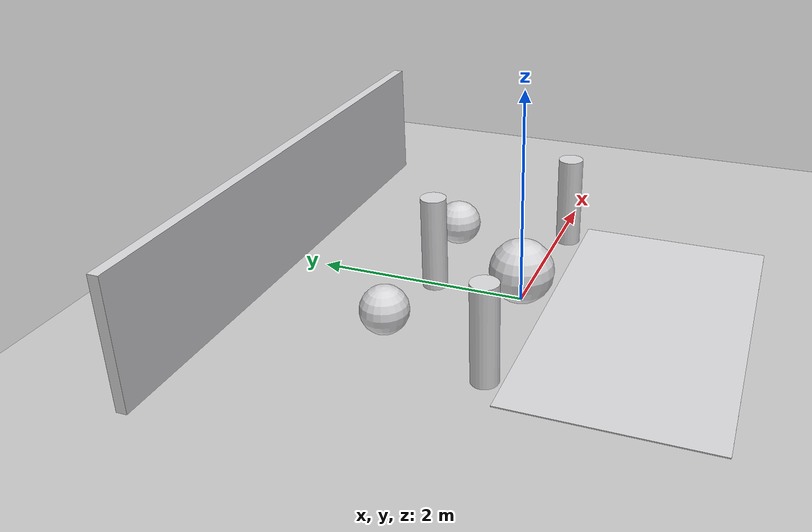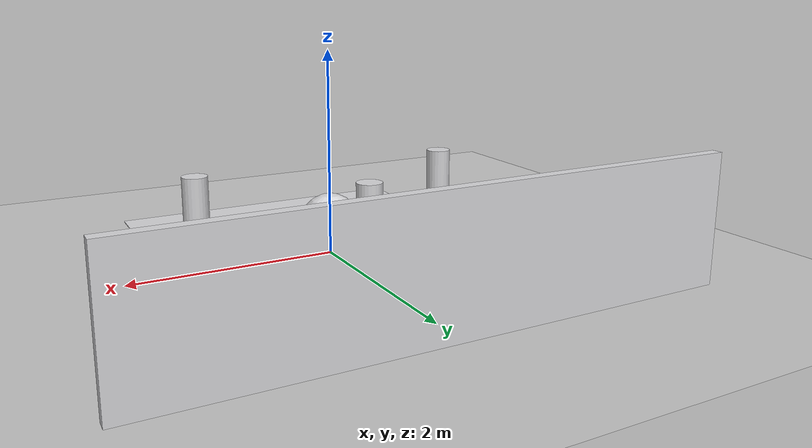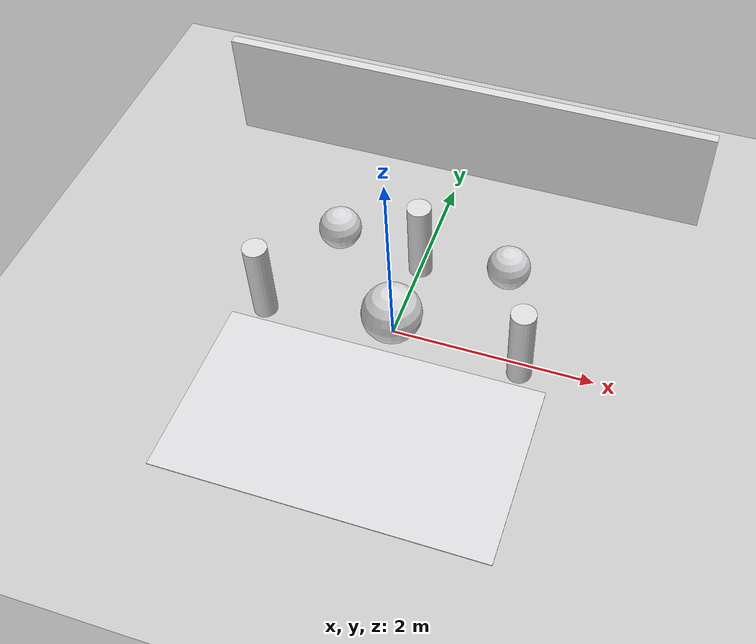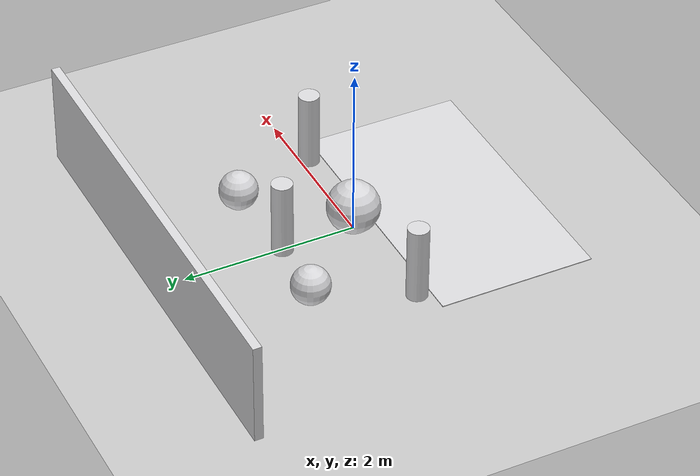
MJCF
<mujoco model="many_lights">
  <compiler angle="degree" autolimits="true"/>

  <visual>

    <headlight ambient="0.06 0.06 0.06" diffuse="0.05 0.05 0.05" specular="0.05 0.05 0.05"/>
    <quality shadowsize="4096" numslices="28" numstacks="16"/>
    <map znear="0.02" zfar="40" shadowclip="1.2" shadowscale="0.7"/>
  </visual>

  <asset>
    <material name="ground" rgba="0.78 0.78 0.78 1" specular="0.15" shininess="0.25"/>
    <material name="pale" rgba="0.85 0.85 0.86 1" specular="0.35" shininess="0.5"/>
    <material name="pale_glossy" rgba="0.85 0.85 0.86 1" specular="0.9" shininess="0.95"/>
  </asset>

  <worldbody>

    <light name="sun" type="directional" pos="0 -4 5" dir="0.15 0.5 -1"
           diffuse="0.30 0.30 0.32" specular="0.15 0.15 0.15" castshadow="true"/>

    <light name="point_r" type="point" pos="-1.30 -0.75 0.80" diffuse="0.90 0.10 0.10"
           specular="0.5 0.1 0.1" attenuation="1 0 0.35" castshadow="false"/>
    <light name="point_g" type="point" pos=" 1.30 -0.75 0.80" diffuse="0.10 0.90 0.15"
           specular="0.1 0.5 0.1" attenuation="1 0 0.35" castshadow="false"/>
    <light name="point_b" type="point" pos=" 0.00  1.50 0.80" diffuse="0.15 0.20 0.95"
           specular="0.1 0.1 0.5" attenuation="1 0 0.35" castshadow="false"/>

    <light name="point_falloff" type="point" pos="-2.40 1.60 0.55" diffuse="0.95 0.55 0.10"
           specular="0.3 0.2 0.05" attenuation="1 0 4.0" castshadow="false"/>

    <light name="spot_narrow" type="spot" pos="-0.55 -2.30 1.80" dir="0 0.35 -1"
           diffuse="0.95 0.90 0.30" specular="0.4 0.4 0.15"
           cutoff="15" exponent="30" attenuation="1 0 0.05" castshadow="false"/>
    <light name="spot_wide" type="spot" pos="0.55 -2.30 1.80" dir="0 0.35 -1"
           diffuse="0.20 0.85 0.95" specular="0.1 0.4 0.4"
           cutoff="55" exponent="2" attenuation="1 0 0.05" castshadow="false"/>

    <light name="point_grazing" type="point" pos="2.30 1.70 0.12" diffuse="0.70 0.15 0.85"
           specular="0.3 0.1 0.35" attenuation="1 0 0.6" castshadow="false"/>

    <light name="fill_00" type="point" pos="-1.5 -1.2 1.5" diffuse="0.08 0.05 0.04" attenuation="1 0 1.5"/>
    <light name="fill_01" type="point" pos="-0.5 -1.2 1.5" diffuse="0.04 0.06 0.08" attenuation="1 0 1.5"/>
    <light name="fill_02" type="point" pos=" 0.5 -1.2 1.5" diffuse="0.08 0.05 0.04" attenuation="1 0 1.5"/>
    <light name="fill_03" type="point" pos=" 1.5 -1.2 1.5" diffuse="0.04 0.06 0.08" attenuation="1 0 1.5"/>
    <light name="fill_04" type="point" pos="-1.5 -0.4 1.5" diffuse="0.04 0.06 0.08" attenuation="1 0 1.5"/>
    <light name="fill_05" type="point" pos="-0.5 -0.4 1.5" diffuse="0.08 0.05 0.04" attenuation="1 0 1.5"/>
    <light name="fill_06" type="point" pos=" 0.5 -0.4 1.5" diffuse="0.04 0.06 0.08" attenuation="1 0 1.5"/>
    <light name="fill_07" type="point" pos=" 1.5 -0.4 1.5" diffuse="0.08 0.05 0.04" attenuation="1 0 1.5"/>
    <light name="fill_08" type="point" pos="-1.5  0.4 1.5" diffuse="0.40 0.24 0.18" attenuation="1 0 1.5"/>
    <light name="fill_09" type="point" pos="-0.5  0.4 1.5" diffuse="0.18 0.29 0.40" attenuation="1 0 1.5"/>
    <light name="fill_10" type="point" pos=" 0.5  0.4 1.5" diffuse="0.40 0.24 0.18" attenuation="1 0 1.5"/>
    <light name="fill_11" type="point" pos=" 1.5  0.4 1.5" diffuse="0.18 0.29 0.40" attenuation="1 0 1.5"/>
    <light name="fill_12" type="point" pos="-1.5  1.2 1.5" diffuse="0.18 0.29 0.40" attenuation="1 0 1.5"/>
    <light name="fill_13" type="point" pos="-0.5  1.2 1.5" diffuse="0.40 0.24 0.18" attenuation="1 0 1.5"/>
    <light name="fill_14" type="point" pos=" 0.5  1.2 1.5" diffuse="0.18 0.29 0.40" attenuation="1 0 1.5"/>
    <light name="fill_15" type="point" pos=" 1.5  1.2 1.5" diffuse="0.40 0.24 0.18" attenuation="1 0 1.5"/>

    <geom name="floor" type="plane" size="0 0 0.05" material="ground"/>

    <geom name="board" type="box" pos="0 -1.15 0.005" size="1.6 0.9 0.005" material="pale"/>

    <geom name="col_0" type="cylinder" pos="-1.30 -0.10 0.45" size="0.12 0.45" material="pale"/>
    <geom name="col_1" type="cylinder" pos=" 1.30 -0.10 0.45" size="0.12 0.45" material="pale"/>
    <geom name="col_2" type="cylinder" pos=" 0.00  0.85 0.45" size="0.12 0.45" material="pale"/>
    <geom name="ball_matte" type="sphere" pos="0 0 0.30" size="0.30" material="pale"/>
    <geom name="ball_glossy" type="sphere" pos="-0.90 0.95 0.22" size="0.22"
          material="pale_glossy"/>
    <geom name="ball_glossy2" type="sphere" pos="0.90 0.95 0.22" size="0.22"
          material="pale_glossy"/>
    <geom name="wall" type="box" pos="0 2.35 0.60" size="2.6 0.05 0.60" material="pale"/>

    <camera name="lights" pos="0.10 -3.90 2.30" xyaxes="1 0 0 0 0.50 0.86"/>
  </worldbody>
</mujoco>
